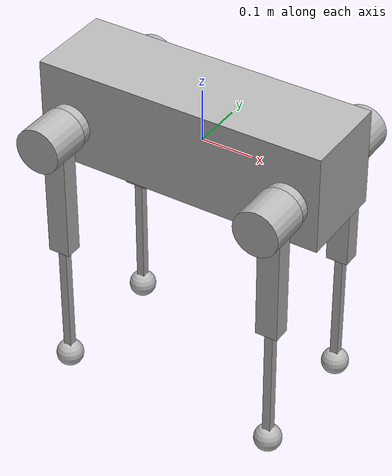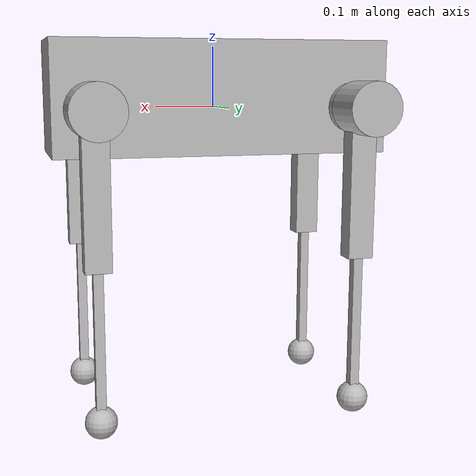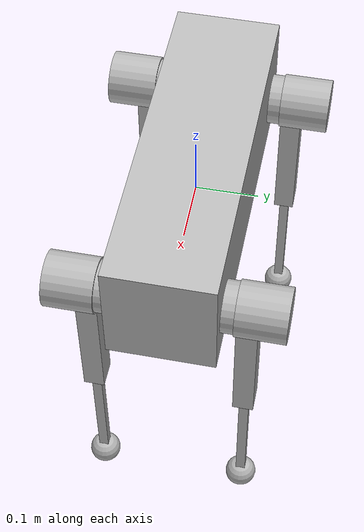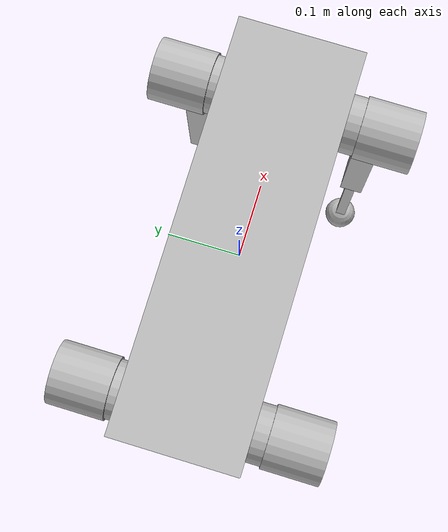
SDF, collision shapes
<sdf version='1.6'>
  <model name='laikago_description'>
    <link name='trunk'>
      <pose frame=''>0 0 0 0 -0 0</pose>
      <inertial>
        <pose frame=''>0.002284 -4.1e-05 0.025165 0 -0 0</pose>
        <mass>13.733</mass>
        <inertia>
          <ixx>0.0733489</ixx>
          <ixy>0.00030338</ixy>
          <ixz>0.00191822</ixz>
          <iyy>0.250685</iyy>
          <iyz>-7.5402e-05</iyz>
          <izz>0.254469</izz>
        </inertia>
      </inertial>
      <collision name='trunk_collision'>
        <pose frame=''>0 0 0.01675 0 -0 0</pose>
        <geometry>
          <box>
            <size>0.5616 0.172 0.1875</size>
          </box>
        </geometry>
      </collision>
      <visual name='trunk_visual'>
        <pose frame=''>0 0 0 0 -0 0</pose>
        <geometry>
          <mesh>
            <scale>1 1 1</scale>
            <uri>../meshes/trunk.dae</uri>
          </mesh>
        </geometry>
      </visual>
    </link>
    <link name='FL_hip'>
      <pose frame=''>0.21935 0.0875 0 0 -0 0</pose>
      <inertial>
        <pose frame=''>-0.001568 -0.008134 0.000864 0 -0 0</pose>
        <mass>1.096</mass>
        <inertia>
          <ixx>0.000822113</ixx>
          <ixy>-4.982e-06</ixy>
          <ixz>-3.672e-05</ixz>
          <iyy>0.000983196</iyy>
          <iyz>2.811e-06</iyz>
          <izz>0.000864753</izz>
        </inertia>
      </inertial>
      <collision name='FL_hip_collision'>
        <pose frame=''>0 -0.021 0 1.5708 -0 0</pose>
        <geometry>
          <cylinder>
            <length>0.08</length>
            <radius>0.041</radius>
          </cylinder>
        </geometry>
      </collision>
      <collision name='FL_hip_fixed_joint_lump__FL_thigh_shoulder_collision_1'>
        <pose frame=''>0 0.059 0 1.5708 -0 0</pose>
        <geometry>
          <cylinder>
            <length>0.08</length>
            <radius>0.044</radius>
          </cylinder>
        </geometry>
      </collision>
      <visual name='FL_hip_visual'>
        <pose frame=''>0 0 0 0 -0 0</pose>
        <geometry>
          <mesh>
            <scale>1 1 1</scale>
            <uri>../meshes/hip.dae</uri>
          </mesh>
        </geometry>
      </visual>
    </link>
    <joint name='FL_hip_joint' type='revolute'>
      <child>FL_hip</child>
      <parent>trunk</parent>
      <axis>
        <xyz>1 0 0</xyz>
        <limit>
          <lower>-0.872665</lower>
          <upper>1.0472</upper>
          <effort>20</effort>
          <velocity>52.4</velocity>
        </limit>
        <dynamics>
          <damping>0</damping>
          <friction>0</friction>
          <spring_reference>0</spring_reference>
          <spring_stiffness>0</spring_stiffness>
        </dynamics>
        <use_parent_model_frame>1</use_parent_model_frame>
      </axis>
    </joint>
    <link name='FL_thigh'>
      <pose frame=''>0.21935 0.1245 0 0 -0 0</pose>
      <inertial>
        <pose frame=''>-0.000482 0.02001 -0.031996 0 -0 0</pose>
        <mass>1.528</mass>
        <inertia>
          <ixx>0.00991611</ixx>
          <ixy>1.0388e-05</ixy>
          <ixz>0.000250428</ixz>
          <iyy>0.00928008</iyy>
          <iyz>-8.511e-05</iyz>
          <izz>0.00178256</izz>
        </inertia>
      </inertial>
      <collision name='FL_thigh_collision'>
        <pose frame=''>0 0 -0.125 3.14159 1.57079 3.14159</pose>
        <geometry>
          <box>
            <size>0.25 0.034 0.043</size>
          </box>
        </geometry>
      </collision>
      <visual name='FL_thigh_visual'>
        <pose frame=''>0 0 0 0 -0 0</pose>
        <geometry>
          <mesh>
            <scale>1 1 1</scale>
            <uri>../meshes/thigh.dae</uri>
          </mesh>
        </geometry>
      </visual>
    </link>
    <joint name='FL_thigh_joint' type='revolute'>
      <child>FL_thigh</child>
      <parent>FL_hip</parent>
      <axis>
        <xyz>0 1 0</xyz>
        <limit>
          <lower>-0.523599</lower>
          <upper>3.92699</upper>
          <effort>55</effort>
          <velocity>28.6</velocity>
        </limit>
        <dynamics>
          <damping>0</damping>
          <friction>0</friction>
          <spring_reference>0</spring_reference>
          <spring_stiffness>0</spring_stiffness>
        </dynamics>
        <use_parent_model_frame>1</use_parent_model_frame>
      </axis>
    </joint>
    <link name='FL_calf'>
      <pose frame=''>0.21935 0.1245 -0.25 0 -0 0</pose>
      <inertial>
        <pose frame=''>-0.001758 -0.000305 -0.14862 0 -0 0</pose>
        <mass>0.301</mass>
        <inertia>
          <ixx>0.00696903</ixx>
          <ixy>1.96806e-07</ixy>
          <ixz>1.03728e-05</ixz>
          <iyy>0.00698384</iyy>
          <iyz>7.45555e-06</iyz>
          <izz>5.18666e-05</izz>
        </inertia>
      </inertial>
      <collision name='FL_calf_collision'>
        <pose frame=''>0 0 -0.125 3.14159 1.57079 3.14159</pose>
        <geometry>
          <box>
            <size>0.25 0.016 0.016</size>
          </box>
        </geometry>
      </collision>
      <collision name='FL_calf_fixed_joint_lump__FL_foot_collision_1'>
        <pose frame=''>0 0 -0.25 0 -0 0</pose>
        <geometry>
          <sphere>
            <radius>0.0265</radius>
          </sphere>
        </geometry>
      </collision>
      <visual name='FL_calf_visual'>
        <pose frame=''>0 0 0 0 -0 0</pose>
        <geometry>
          <mesh>
            <scale>1 1 1</scale>
            <uri>../meshes/calf.dae</uri>
          </mesh>
        </geometry>
      </visual>
      <visual name='FL_calf_fixed_joint_lump__FL_foot_visual_1'>
        <pose frame=''>0 0 -0.25 0 -0 0</pose>
        <geometry>
          <sphere>
            <radius>0.0165</radius>
          </sphere>
        </geometry>
      </visual>
    </link>
    <joint name='FL_calf_joint' type='revolute'>
      <child>FL_calf</child>
      <parent>FL_thigh</parent>
      <axis>
        <xyz>0 1 0</xyz>
        <limit>
          <lower>-2.77507</lower>
          <upper>-0.610865</upper>
          <effort>55</effort>
          <velocity>28.6</velocity>
        </limit>
        <dynamics>
          <damping>0</damping>
          <friction>0</friction>
          <spring_reference>0</spring_reference>
          <spring_stiffness>0</spring_stiffness>
        </dynamics>
        <use_parent_model_frame>1</use_parent_model_frame>
      </axis>
    </joint>
    <link name='FR_hip'>
      <pose frame=''>0.21935 -0.0875 0 0 -0 0</pose>
      <inertial>
        <pose frame=''>-0.001568 0.008134 0.000864 0 -0 0</pose>
        <mass>1.096</mass>
        <inertia>
          <ixx>0.000822113</ixx>
          <ixy>4.982e-06</ixy>
          <ixz>-3.672e-05</ixz>
          <iyy>0.000983196</iyy>
          <iyz>-2.811e-06</iyz>
          <izz>0.000864753</izz>
        </inertia>
      </inertial>
      <collision name='FR_hip_collision'>
        <pose frame=''>0 0.021 0 1.5708 -0 0</pose>
        <geometry>
          <cylinder>
            <length>0.08</length>
            <radius>0.041</radius>
          </cylinder>
        </geometry>
      </collision>
      <collision name='FR_hip_fixed_joint_lump__FR_thigh_shoulder_collision_1'>
        <pose frame=''>0 -0.059 0 1.5708 -0 0</pose>
        <geometry>
          <cylinder>
            <length>0.08</length>
            <radius>0.044</radius>
          </cylinder>
        </geometry>
      </collision>
      <visual name='FR_hip_visual'>
        <pose frame=''>0 0 0 -3.14159 -0 0</pose>
        <geometry>
          <mesh>
            <scale>1 1 1</scale>
            <uri>../meshes/hip.dae</uri>
          </mesh>
        </geometry>
      </visual>
    </link>
    <joint name='FR_hip_joint' type='revolute'>
      <child>FR_hip</child>
      <parent>trunk</parent>
      <axis>
        <xyz>1 0 0</xyz>
        <limit>
          <lower>-1.0472</lower>
          <upper>0.872665</upper>
          <effort>20</effort>
          <velocity>52.4</velocity>
        </limit>
        <dynamics>
          <damping>0</damping>
          <friction>0</friction>
          <spring_reference>0</spring_reference>
          <spring_stiffness>0</spring_stiffness>
        </dynamics>
        <use_parent_model_frame>1</use_parent_model_frame>
      </axis>
    </joint>
    <link name='FR_thigh'>
      <pose frame=''>0.21935 -0.1245 0 0 -0 0</pose>
      <inertial>
        <pose frame=''>-0.000482 -0.02001 -0.031996 0 -0 0</pose>
        <mass>1.528</mass>
        <inertia>
          <ixx>0.00991611</ixx>
          <ixy>-1.0388e-05</ixy>
          <ixz>0.000250428</ixz>
          <iyy>0.00928008</iyy>
          <iyz>8.511e-05</iyz>
          <izz>0.00178256</izz>
        </inertia>
      </inertial>
      <collision name='FR_thigh_collision'>
        <pose frame=''>0 0 -0.125 3.14159 1.57079 3.14159</pose>
        <geometry>
          <box>
            <size>0.25 0.034 0.043</size>
          </box>
        </geometry>
      </collision>
      <visual name='FR_thigh_visual'>
        <pose frame=''>0 0 0 0 -0 0</pose>
        <geometry>
          <mesh>
            <scale>1 1 1</scale>
            <uri>../meshes/thigh_mirror.dae</uri>
          </mesh>
        </geometry>
      </visual>
    </link>
    <joint name='FR_thigh_joint' type='revolute'>
      <child>FR_thigh</child>
      <parent>FR_hip</parent>
      <axis>
        <xyz>0 1 0</xyz>
        <limit>
          <lower>-0.523599</lower>
          <upper>3.92699</upper>
          <effort>55</effort>
          <velocity>28.6</velocity>
        </limit>
        <dynamics>
          <damping>0</damping>
          <friction>0</friction>
          <spring_reference>0</spring_reference>
          <spring_stiffness>0</spring_stiffness>
        </dynamics>
        <use_parent_model_frame>1</use_parent_model_frame>
      </axis>
    </joint>
    <link name='FR_calf'>
      <pose frame=''>0.21935 -0.1245 -0.25 0 -0 0</pose>
      <inertial>
        <pose frame=''>-0.001758 -0.000305 -0.14862 0 -0 0</pose>
        <mass>0.301</mass>
        <inertia>
          <ixx>0.00696903</ixx>
          <ixy>1.96806e-07</ixy>
          <ixz>1.03728e-05</ixz>
          <iyy>0.00698384</iyy>
          <iyz>7.45555e-06</iyz>
          <izz>5.18666e-05</izz>
        </inertia>
      </inertial>
      <collision name='FR_calf_collision'>
        <pose frame=''>0 0 -0.125 3.14159 1.57079 3.14159</pose>
        <geometry>
          <box>
            <size>0.25 0.016 0.016</size>
          </box>
        </geometry>
      </collision>
      <collision name='FR_calf_fixed_joint_lump__FR_foot_collision_1'>
        <pose frame=''>0 0 -0.25 0 -0 0</pose>
        <geometry>
          <sphere>
            <radius>0.0265</radius>
          </sphere>
        </geometry>
      </collision>
      <visual name='FR_calf_visual'>
        <pose frame=''>0 0 0 0 -0 0</pose>
        <geometry>
          <mesh>
            <scale>1 1 1</scale>
            <uri>../meshes/calf.dae</uri>
          </mesh>
        </geometry>
      </visual>
      <visual name='FR_calf_fixed_joint_lump__FR_foot_visual_1'>
        <pose frame=''>0 0 -0.25 0 -0 0</pose>
        <geometry>
          <sphere>
            <radius>0.0165</radius>
          </sphere>
        </geometry>
      </visual>
    </link>
    <joint name='FR_calf_joint' type='revolute'>
      <child>FR_calf</child>
      <parent>FR_thigh</parent>
      <axis>
        <xyz>0 1 0</xyz>
        <limit>
          <lower>-2.77507</lower>
          <upper>-0.610865</upper>
          <effort>55</effort>
          <velocity>28.6</velocity>
        </limit>
        <dynamics>
          <damping>0</damping>
          <friction>0</friction>
          <spring_reference>0</spring_reference>
          <spring_stiffness>0</spring_stiffness>
        </dynamics>
        <use_parent_model_frame>1</use_parent_model_frame>
      </axis>
    </joint>
    <link name='RL_hip'>
      <pose frame=''>-0.21935 0.0875 0 0 -0 0</pose>
      <inertial>
        <pose frame=''>0.001568 -0.008134 0.000864 0 -0 0</pose>
        <mass>1.096</mass>
        <inertia>
          <ixx>0.000822113</ixx>
          <ixy>4.982e-06</ixy>
          <ixz>3.672e-05</ixz>
          <iyy>0.000983196</iyy>
          <iyz>2.811e-06</iyz>
          <izz>0.000864753</izz>
        </inertia>
      </inertial>
      <collision name='RL_hip_collision'>
        <pose frame=''>0 -0.021 0 1.5708 -0 0</pose>
        <geometry>
          <cylinder>
            <length>0.08</length>
            <radius>0.041</radius>
          </cylinder>
        </geometry>
      </collision>
      <collision name='RL_hip_fixed_joint_lump__RL_thigh_shoulder_collision_1'>
        <pose frame=''>0 0.059 0 1.5708 -0 0</pose>
        <geometry>
          <cylinder>
            <length>0.08</length>
            <radius>0.044</radius>
          </cylinder>
        </geometry>
      </collision>
      <visual name='RL_hip_visual'>
        <pose frame=''>0 0 0 3.14159 -0 3.14159</pose>
        <geometry>
          <mesh>
            <scale>1 1 1</scale>
            <uri>../meshes/hip.dae</uri>
          </mesh>
        </geometry>
      </visual>
    </link>
    <joint name='RL_hip_joint' type='revolute'>
      <child>RL_hip</child>
      <parent>trunk</parent>
      <axis>
        <xyz>1 0 0</xyz>
        <limit>
          <lower>-0.872665</lower>
          <upper>1.0472</upper>
          <effort>20</effort>
          <velocity>52.4</velocity>
        </limit>
        <dynamics>
          <damping>0</damping>
          <friction>0</friction>
          <spring_reference>0</spring_reference>
          <spring_stiffness>0</spring_stiffness>
        </dynamics>
        <use_parent_model_frame>1</use_parent_model_frame>
      </axis>
    </joint>
    <link name='RL_thigh'>
      <pose frame=''>-0.21935 0.1245 0 0 -0 0</pose>
      <inertial>
        <pose frame=''>-0.000482 0.02001 -0.031996 0 -0 0</pose>
        <mass>1.528</mass>
        <inertia>
          <ixx>0.00991611</ixx>
          <ixy>1.0388e-05</ixy>
          <ixz>0.000250428</ixz>
          <iyy>0.00928008</iyy>
          <iyz>-8.511e-05</iyz>
          <izz>0.00178256</izz>
        </inertia>
      </inertial>
      <collision name='RL_thigh_collision'>
        <pose frame=''>0 0 -0.125 3.14159 1.57079 3.14159</pose>
        <geometry>
          <box>
            <size>0.25 0.034 0.043</size>
          </box>
        </geometry>
      </collision>
      <visual name='RL_thigh_visual'>
        <pose frame=''>0 0 0 0 -0 0</pose>
        <geometry>
          <mesh>
            <scale>1 1 1</scale>
            <uri>../meshes/thigh.dae</uri>
          </mesh>
        </geometry>
      </visual>
    </link>
    <joint name='RL_thigh_joint' type='revolute'>
      <child>RL_thigh</child>
      <parent>RL_hip</parent>
      <axis>
        <xyz>0 1 0</xyz>
        <limit>
          <lower>-0.523599</lower>
          <upper>3.92699</upper>
          <effort>55</effort>
          <velocity>28.6</velocity>
        </limit>
        <dynamics>
          <damping>0</damping>
          <friction>0</friction>
          <spring_reference>0</spring_reference>
          <spring_stiffness>0</spring_stiffness>
        </dynamics>
        <use_parent_model_frame>1</use_parent_model_frame>
      </axis>
    </joint>
    <link name='RL_calf'>
      <pose frame=''>-0.21935 0.1245 -0.25 0 -0 0</pose>
      <inertial>
        <pose frame=''>-0.001758 -0.000305 -0.14862 0 -0 0</pose>
        <mass>0.301</mass>
        <inertia>
          <ixx>0.00696903</ixx>
          <ixy>1.96806e-07</ixy>
          <ixz>1.03728e-05</ixz>
          <iyy>0.00698384</iyy>
          <iyz>7.45555e-06</iyz>
          <izz>5.18666e-05</izz>
        </inertia>
      </inertial>
      <collision name='RL_calf_collision'>
        <pose frame=''>0 0 -0.125 3.14159 1.57079 3.14159</pose>
        <geometry>
          <box>
            <size>0.25 0.016 0.016</size>
          </box>
        </geometry>
      </collision>
      <collision name='RL_calf_fixed_joint_lump__RL_foot_collision_1'>
        <pose frame=''>0 0 -0.25 0 -0 0</pose>
        <geometry>
          <sphere>
            <radius>0.0265</radius>
          </sphere>
        </geometry>
      </collision>
      <visual name='RL_calf_visual'>
        <pose frame=''>0 0 0 0 -0 0</pose>
        <geometry>
          <mesh>
            <scale>1 1 1</scale>
            <uri>../meshes/calf.dae</uri>
          </mesh>
        </geometry>
      </visual>
      <visual name='RL_calf_fixed_joint_lump__RL_foot_visual_1'>
        <pose frame=''>0 0 -0.25 0 -0 0</pose>
        <geometry>
          <sphere>
            <radius>0.0165</radius>
          </sphere>
        </geometry>
      </visual>
    </link>
    <joint name='RL_calf_joint' type='revolute'>
      <child>RL_calf</child>
      <parent>RL_thigh</parent>
      <axis>
        <xyz>0 1 0</xyz>
        <limit>
          <lower>-2.77507</lower>
          <upper>-0.610865</upper>
          <effort>55</effort>
          <velocity>28.6</velocity>
        </limit>
        <dynamics>
          <damping>0</damping>
          <friction>0</friction>
          <spring_reference>0</spring_reference>
          <spring_stiffness>0</spring_stiffness>
        </dynamics>
        <use_parent_model_frame>1</use_parent_model_frame>
      </axis>
    </joint>
    <link name='RR_hip'>
      <pose frame=''>-0.21935 -0.0875 0 0 -0 0</pose>
      <inertial>
        <pose frame=''>0.001568 0.008134 0.000864 0 -0 0</pose>
        <mass>1.096</mass>
        <inertia>
          <ixx>0.000822113</ixx>
          <ixy>-4.982e-06</ixy>
          <ixz>3.672e-05</ixz>
          <iyy>0.000983196</iyy>
          <iyz>-2.811e-06</iyz>
          <izz>0.000864753</izz>
        </inertia>
      </inertial>
      <collision name='RR_hip_collision'>
        <pose frame=''>0 0.021 0 1.5708 -0 0</pose>
        <geometry>
          <cylinder>
            <length>0.08</length>
            <radius>0.041</radius>
          </cylinder>
        </geometry>
      </collision>
      <collision name='RR_hip_fixed_joint_lump__RR_thigh_shoulder_collision_1'>
        <pose frame=''>0 -0.059 0 1.5708 -0 0</pose>
        <geometry>
          <cylinder>
            <length>0.08</length>
            <radius>0.044</radius>
          </cylinder>
        </geometry>
      </collision>
      <visual name='RR_hip_visual'>
        <pose frame=''>0 0 0 0 -0 3.14159</pose>
        <geometry>
          <mesh>
            <scale>1 1 1</scale>
            <uri>../meshes/hip.dae</uri>
          </mesh>
        </geometry>
      </visual>
    </link>
    <joint name='RR_hip_joint' type='revolute'>
      <child>RR_hip</child>
      <parent>trunk</parent>
      <axis>
        <xyz>1 0 0</xyz>
        <limit>
          <lower>-1.0472</lower>
          <upper>0.872665</upper>
          <effort>20</effort>
          <velocity>52.4</velocity>
        </limit>
        <dynamics>
          <damping>0</damping>
          <friction>0</friction>
          <spring_reference>0</spring_reference>
          <spring_stiffness>0</spring_stiffness>
        </dynamics>
        <use_parent_model_frame>1</use_parent_model_frame>
      </axis>
    </joint>
    <link name='RR_thigh'>
      <pose frame=''>-0.21935 -0.1245 0 0 -0 0</pose>
      <inertial>
        <pose frame=''>-0.000482 -0.02001 -0.031996 0 -0 0</pose>
        <mass>1.528</mass>
        <inertia>
          <ixx>0.00991611</ixx>
          <ixy>-1.0388e-05</ixy>
          <ixz>0.000250428</ixz>
          <iyy>0.00928008</iyy>
          <iyz>8.511e-05</iyz>
          <izz>0.00178256</izz>
        </inertia>
      </inertial>
      <collision name='RR_thigh_collision'>
        <pose frame=''>0 0 -0.125 3.14159 1.57079 3.14159</pose>
        <geometry>
          <box>
            <size>0.25 0.034 0.043</size>
          </box>
        </geometry>
      </collision>
      <visual name='RR_thigh_visual'>
        <pose frame=''>0 0 0 0 -0 0</pose>
        <geometry>
          <mesh>
            <scale>1 1 1</scale>
            <uri>../meshes/thigh_mirror.dae</uri>
          </mesh>
        </geometry>
      </visual>
    </link>
    <joint name='RR_thigh_joint' type='revolute'>
      <child>RR_thigh</child>
      <parent>RR_hip</parent>
      <axis>
        <xyz>0 1 0</xyz>
        <limit>
          <lower>-0.523599</lower>
          <upper>3.92699</upper>
          <effort>55</effort>
          <velocity>28.6</velocity>
        </limit>
        <dynamics>
          <damping>0</damping>
          <friction>0</friction>
          <spring_reference>0</spring_reference>
          <spring_stiffness>0</spring_stiffness>
        </dynamics>
        <use_parent_model_frame>1</use_parent_model_frame>
      </axis>
    </joint>
    <link name='RR_calf'>
      <pose frame=''>-0.21935 -0.1245 -0.25 0 -0 0</pose>
      <inertial>
        <pose frame=''>-0.001758 -0.000305 -0.14862 0 -0 0</pose>
        <mass>0.301</mass>
        <inertia>
          <ixx>0.00696903</ixx>
          <ixy>1.96806e-07</ixy>
          <ixz>1.03728e-05</ixz>
          <iyy>0.00698384</iyy>
          <iyz>7.45555e-06</iyz>
          <izz>5.18666e-05</izz>
        </inertia>
      </inertial>
      <collision name='RR_calf_collision'>
        <pose frame=''>0 0 -0.125 3.14159 1.57079 3.14159</pose>
        <geometry>
          <box>
            <size>0.25 0.016 0.016</size>
          </box>
        </geometry>
      </collision>
      <collision name='RR_calf_fixed_joint_lump__RR_foot_collision_1'>
        <pose frame=''>0 0 -0.25 0 -0 0</pose>
        <geometry>
          <sphere>
            <radius>0.0265</radius>
          </sphere>
        </geometry>
      </collision>
      <visual name='RR_calf_visual'>
        <pose frame=''>0 0 0 0 -0 0</pose>
        <geometry>
          <mesh>
            <scale>1 1 1</scale>
            <uri>../meshes/calf.dae</uri>
          </mesh>
        </geometry>
      </visual>
      <visual name='RR_calf_fixed_joint_lump__RR_foot_visual_1'>
        <pose frame=''>0 0 -0.25 0 -0 0</pose>
        <geometry>
          <sphere>
            <radius>0.0165</radius>
          </sphere>
        </geometry>
      </visual>
    </link>
    <joint name='RR_calf_joint' type='revolute'>
      <child>RR_calf</child>
      <parent>RR_thigh</parent>
      <axis>
        <xyz>0 1 0</xyz>
        <limit>
          <lower>-2.77507</lower>
          <upper>-0.610865</upper>
          <effort>55</effort>
          <velocity>28.6</velocity>
        </limit>
        <dynamics>
          <damping>0</damping>
          <friction>0</friction>
          <spring_reference>0</spring_reference>
          <spring_stiffness>0</spring_stiffness>
        </dynamics>
        <use_parent_model_frame>1</use_parent_model_frame>
      </axis>
    </joint>
  </model>
</sdf>
